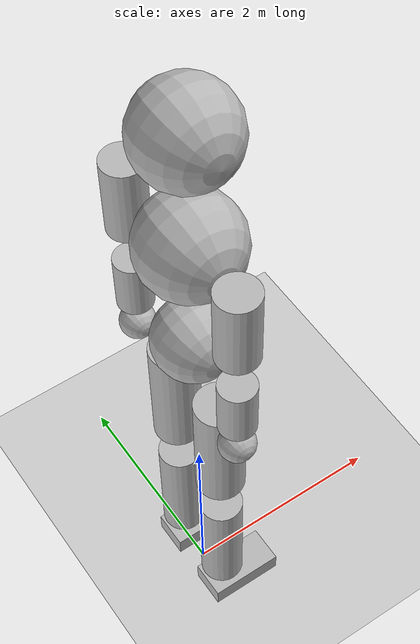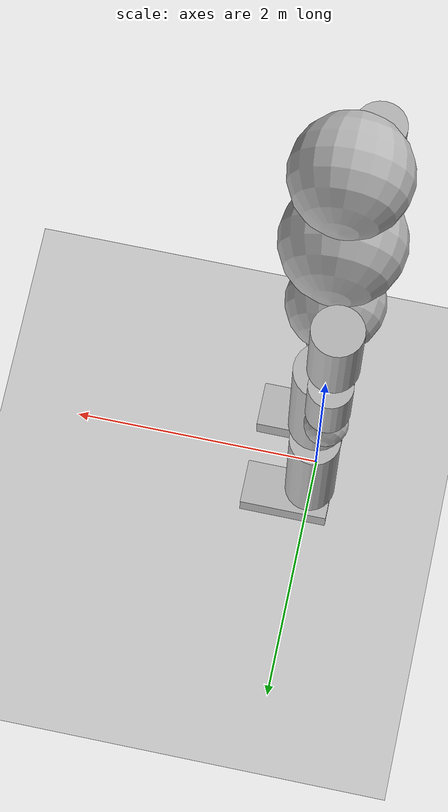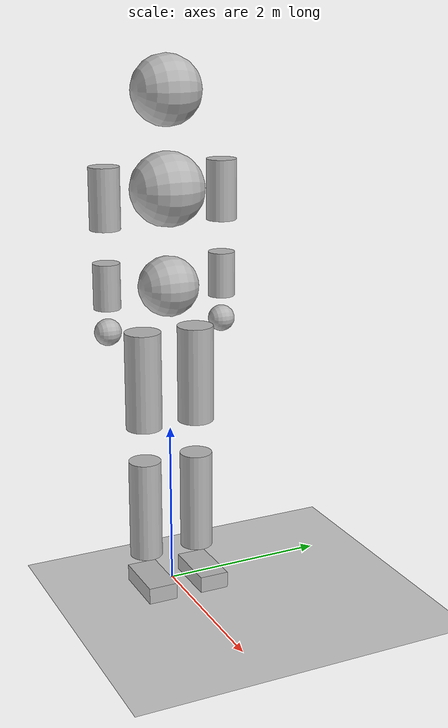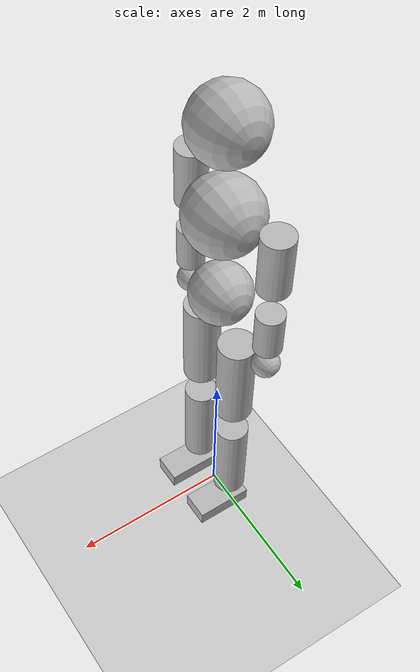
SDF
<sdf version="1.6">
 <world name="default">
  <light name="sun" type="directional">
   <pose>0 0 10 0 -0 0</pose>
   <diffuse>0.8 0.8 0.8 1</diffuse>
   <specular>0.1 0.1 0.1 1</specular>
   <attenuation>
    <range>1000</range>
    <constant>0.9</constant>
    <linear>0.01</linear>
    <quadratic>0.001</quadratic>
   </attenuation>
   <direction>-0.5 0.5 -1</direction>
  </light>
  <model name="ground_plane">
   <static>1</static>
   <link name="link">
    <collision name="collision">
     <geometry><plane><normal>0 0 1</normal><size>100 100</size></plane></geometry>
     <surface><friction><ode><mu>100</mu><mu2>50</mu2></ode></friction></surface>
    </collision>
    <visual name="visual">
     <cast_shadows>0</cast_shadows>
     <geometry><plane><normal>0 0 1</normal><size>100 100</size></plane></geometry>
     <material>
      <script><uri>file://media/materials/scripts/gazebo.material</uri><name>Gazebo/Grey</name></script>
     </material>
    </visual>
    <gravity>0</gravity>
   </link>
  </model>
  <gravity>0 0 -9.8</gravity>
  <magnetic_field>6e-06 2.3e-05 -4.2e-05</magnetic_field>
  <atmosphere type="adiabatic"/>
  <physics name="default_physics" default="0" type="ode">
   <max_step_size>0.001</max_step_size>
   <real_time_factor>1</real_time_factor>
   <real_time_update_rate>1000</real_time_update_rate>
  </physics>
  <scene><ambient>0.4 0.4 0.4 1</ambient><background>0.7 0.7 0.7 1</background><shadows>1</shadows></scene>
  <spherical_coordinates>
   <surface_model>EARTH_WGS84</surface_model>
   <latitude_deg>0</latitude_deg>
   <longitude_deg>0</longitude_deg>
   <elevation>0</elevation>
   <heading_deg>0</heading_deg>
  </spherical_coordinates>
  <model name="robot_description">
   <link name="base">
    <inertial>
     <pose>0 0.000223 0.279995 0 -0 0</pose>
     <mass>6.0001</mass>
     <inertia>
      <ixx>0.100108</ixx>
      <ixy>0</ixy>
      <ixz>0</ixz>
      <iyy>0.100108</iyy>
      <iyz>-6.2431e-09</iyz>
      <izz>0.1001</izz>
     </inertia>
    </inertial>
    <collision name="base_fixed_joint_lump__root_collision">
     <pose>0 0.000223 0.28 1.57 -0 0</pose>
     <geometry><sphere><radius>0.36</radius></sphere></geometry>
    </collision>
    <visual name="base_fixed_joint_lump__root_visual">
     <pose>0 0.000223 0.28 1.57 -0 0</pose>
     <geometry><sphere><radius>0.36</radius></sphere></geometry>
    </visual>
   </link>
   <link name="chest">
    <pose>0 0.000752 0.944604 1.57 -0 0</pose>
    <inertial>
     <pose>0 0.48 0 0 -0 0</pose>
     <mass>14</mass>
     <inertia><ixx>0.1</ixx><ixy>0</ixy><ixz>0</ixz><iyy>0.1</iyy><iyz>0</iyz><izz>0.1</izz></inertia>
    </inertial>
    <collision name="chest_collision">
     <pose>0 0.48 0 0 -0 0</pose>
     <geometry><sphere><radius>0.44</radius></sphere></geometry>
    </collision>
    <visual name="chest_visual">
     <pose>0 0.48 0 0 -0 0</pose>
     <geometry><sphere><radius>0.44</radius></sphere></geometry>
    </visual>
   </link>
   <joint name="chest" type="revolute">
    <child>chest</child>
    <parent>base</parent>
    <axis>
     <xyz>0 -1 0.000796</xyz>
     <limit><lower>-1e+16</lower><upper>1e+16</upper></limit>
     <dynamics><spring_reference>0</spring_reference><spring_stiffness>0</spring_stiffness></dynamics>
     <use_parent_model_frame>1</use_parent_model_frame>
    </axis>
   </joint>
   <link name="left_shoulder">
    <pose>-0.0962 0.733968 1.91802 1.57 -0 0</pose>
    <inertial>
     <pose>0 -0.56 0 0 -0 0</pose>
     <mass>1.5</mass>
     <inertia><ixx>0.1</ixx><ixy>0</ixy><ixz>0</ixz><iyy>0.1</iyy><iyz>0</iyz><izz>0.1</izz></inertia>
    </inertial>
    <collision name="left_shoulder_collision">
     <pose>0 -0.56 0 -1.5708 0 0</pose>
     <geometry><cylinder><length>0.72</length><radius>0.18</radius></cylinder></geometry>
    </collision>
    <visual name="left_shoulder_visual">
     <pose>0 -0.56 0 -1.5708 0 0</pose>
     <geometry><cylinder><length>0.72</length><radius>0.18</radius></cylinder></geometry>
    </visual>
   </link>
   <joint name="left_shoulder" type="revolute">
    <child>left_shoulder</child>
    <parent>chest</parent>
    <axis>
     <xyz>0 -1 0.000796</xyz>
     <limit><lower>-1e+16</lower><upper>1e+16</upper></limit>
     <dynamics><spring_reference>0</spring_reference><spring_stiffness>0</spring_stiffness></dynamics>
     <use_parent_model_frame>1</use_parent_model_frame>
    </axis>
   </joint>
   <link name="left_elbow">
    <pose>-0.0962 0.733092 0.818868 1.57 -0 0</pose>
    <inertial>
     <pose>0 -0.665263 0 0 -0 0</pose>
     <mass>1.5</mass>
     <inertia><ixx>0.302967</ixx><ixy>0</ixy><ixz>0</ixz><iyy>0.2</iyy><iyz>0</iyz><izz>0.302967</izz></inertia>
    </inertial>
    <collision name="left_elbow_collision">
     <pose>0 -0.48 0 -1.5708 0 0</pose>
     <geometry><cylinder><length>0.54</length><radius>0.16</radius></cylinder></geometry>
    </collision>
    <collision name="left_elbow_fixed_joint_lump__left_wrist_collision_1">
     <pose>0 -1.03579 0 0 -0 0</pose>
     <geometry><sphere><radius>0.16</radius></sphere></geometry>
    </collision>
    <visual name="left_elbow_visual">
     <pose>0 -0.48 0 -1.5708 0 0</pose>
     <geometry><cylinder><length>0.54</length><radius>0.16</radius></cylinder></geometry>
    </visual>
    <visual name="left_elbow_fixed_joint_lump__left_wrist_visual_1">
     <pose>0 -1.03579 0 0 -0 0</pose>
     <geometry><sphere><radius>0.16</radius></sphere></geometry>
    </visual>
   </link>
   <joint name="left_elbow" type="revolute">
    <child>left_elbow</child>
    <parent>left_shoulder</parent>
    <axis>
     <xyz>0 -1 0.000796</xyz>
     <limit><lower>0</lower><upper>3.14</upper><effort>1000</effort><velocity>0.5</velocity></limit>
     <dynamics><spring_reference>0</spring_reference><spring_stiffness>0</spring_stiffness></dynamics>
     <use_parent_model_frame>1</use_parent_model_frame>
    </axis>
   </joint>
   <link name="neck">
    <pose>0 0.001465 1.84018 1.57 -0 0</pose>
    <inertial>
     <pose>0 0.7 0 0 -0 0</pose>
     <mass>2</mass>
     <inertia><ixx>0.1</ixx><ixy>0</ixy><ixz>0</ixz><iyy>0.1</iyy><iyz>0</iyz><izz>0.1</izz></inertia>
    </inertial>
    <collision name="neck_collision">
     <pose>0 0.7 0 0 -0 0</pose>
     <geometry><sphere><radius>0.41</radius></sphere></geometry>
    </collision>
    <visual name="neck_visual">
     <pose>0 0.7 0 0 -0 0</pose>
     <geometry><sphere><radius>0.41</radius></sphere></geometry>
    </visual>
   </link>
   <joint name="neck" type="revolute">
    <child>neck</child>
    <parent>chest</parent>
    <axis>
     <xyz>1 0.000796 1</xyz>
     <limit><lower>-1e+16</lower><upper>1e+16</upper></limit>
     <dynamics><spring_reference>0</spring_reference><spring_stiffness>0</spring_stiffness></dynamics>
     <use_parent_model_frame>1</use_parent_model_frame>
    </axis>
   </joint>
   <link name="right_shoulder">
    <pose>-0.0962 -0.730912 1.91919 1.57 -0 0</pose>
    <inertial>
     <pose>0 -0.56 0 0 -0 0</pose>
     <mass>1.5</mass>
     <inertia><ixx>0.1</ixx><ixy>0</ixy><ixz>0</ixz><iyy>0.1</iyy><iyz>0</iyz><izz>0.1</izz></inertia>
    </inertial>
    <collision name="right_shoulder_collision">
     <pose>0 -0.56 0 -1.5708 0 0</pose>
     <geometry><cylinder><length>0.72</length><radius>0.18</radius></cylinder></geometry>
    </collision>
    <visual name="right_shoulder_visual">
     <pose>0 -0.56 0 -1.5708 0 0</pose>
     <geometry><cylinder><length>0.72</length><radius>0.18</radius></cylinder></geometry>
    </visual>
   </link>
   <joint name="right_shoulder" type="revolute">
    <child>right_shoulder</child>
    <parent>chest</parent>
    <axis>
     <xyz>0 -1 0.000796</xyz>
     <limit><lower>-1e+16</lower><upper>1e+16</upper></limit>
     <dynamics><spring_reference>0</spring_reference><spring_stiffness>0</spring_stiffness></dynamics>
     <use_parent_model_frame>1</use_parent_model_frame>
    </axis>
   </joint>
   <link name="right_elbow">
    <pose>-0.0962 -0.731787 0.820035 1.57 -0 0</pose>
    <inertial>
     <pose>0 -0.665263 0 0 -0 0</pose>
     <mass>1.5</mass>
     <inertia><ixx>0.302967</ixx><ixy>0</ixy><ixz>0</ixz><iyy>0.2</iyy><iyz>0</iyz><izz>0.302967</izz></inertia>
    </inertial>
    <collision name="right_elbow_collision">
     <pose>0 -0.48 0 -1.5708 0 0</pose>
     <geometry><cylinder><length>0.54</length><radius>0.16</radius></cylinder></geometry>
    </collision>
    <collision name="right_elbow_fixed_joint_lump__right_wrist_collision_1">
     <pose>0 -1.03579 0 0 -0 0</pose>
     <geometry><sphere><radius>0.16</radius></sphere></geometry>
    </collision>
    <visual name="right_elbow_visual">
     <pose>0 -0.48 0 -1.5708 0 0</pose>
     <geometry><cylinder><length>0.54</length><radius>0.16</radius></cylinder></geometry>
    </visual>
    <visual name="right_elbow_fixed_joint_lump__right_wrist_visual_1">
     <pose>0 -1.03579 0 0 -0 0</pose>
     <geometry><sphere><radius>0.16</radius></sphere></geometry>
    </visual>
   </link>
   <joint name="right_elbow" type="revolute">
    <child>right_elbow</child>
    <parent>right_shoulder</parent>
    <axis>
     <xyz>0 -1 0.000796</xyz>
     <limit><lower>0</lower><upper>3.14</upper><effort>1000</effort><velocity>0.5</velocity></limit>
     <dynamics><spring_reference>0</spring_reference><spring_stiffness>0</spring_stiffness></dynamics>
     <use_parent_model_frame>1</use_parent_model_frame>
    </axis>
   </joint>
   <link name="left_hip">
    <pose>0 0.339548 -0.00027 1.57 -0 0</pose>
    <inertial>
     <pose>0 -0.84 0 0 -0 0</pose>
     <mass>4.5</mass>
     <inertia><ixx>0.1</ixx><ixy>0</ixy><ixz>0</ixz><iyy>0.1</iyy><iyz>0</iyz><izz>0.1</izz></inertia>
    </inertial>
    <collision name="left_hip_collision">
     <pose>0 -0.84 0 -1.5708 0 0</pose>
     <geometry><cylinder><length>1.2</length><radius>0.22</radius></cylinder></geometry>
    </collision>
    <visual name="left_hip_visual">
     <pose>0 -0.84 0 -1.5708 0 0</pose>
     <geometry><cylinder><length>1.2</length><radius>0.22</radius></cylinder></geometry>
    </visual>
   </link>
   <joint name="left_hip" type="revolute">
    <child>left_hip</child>
    <parent>base</parent>
    <axis>
     <xyz>0 -1 0.000796</xyz>
     <limit><lower>-1e+16</lower><upper>1e+16</upper></limit>
     <dynamics><spring_reference>0</spring_reference><spring_stiffness>0</spring_stiffness></dynamics>
     <use_parent_model_frame>1</use_parent_model_frame>
    </axis>
   </joint>
   <link name="left_knee">
    <pose>0 0.338205 -1.68645 1.57 -0 0</pose>
    <inertial>
     <pose>0 -0.8 0 0 -0 0</pose>
     <mass>3</mass>
     <inertia><ixx>0.1</ixx><ixy>0</ixy><ixz>0</ixz><iyy>0.1</iyy><iyz>0</iyz><izz>0.1</izz></inertia>
    </inertial>
    <collision name="left_knee_collision">
     <pose>0 -0.8 0 -1.5708 0 0</pose>
     <geometry><cylinder><length>1.24</length><radius>0.2</radius></cylinder></geometry>
    </collision>
    <visual name="left_knee_visual">
     <pose>0 -0.8 0 -1.5708 0 0</pose>
     <geometry><cylinder><length>1.24</length><radius>0.2</radius></cylinder></geometry>
    </visual>
   </link>
   <joint name="left_knee" type="revolute">
    <child>left_knee</child>
    <parent>left_hip</parent>
    <axis>
     <xyz>0 -1 0.000796</xyz>
     <limit><lower>-3.14</lower><upper>0</upper><effort>1000</effort><velocity>0.5</velocity></limit>
     <dynamics><spring_reference>0</spring_reference><spring_stiffness>0</spring_stiffness></dynamics>
     <use_parent_model_frame>1</use_parent_model_frame>
    </axis>
   </joint>
   <link name="left_ankle">
    <pose>0 0.3369 -3.32593 1.57 -0 0</pose>
    <inertial>
     <pose>0.18 -0.09 0 0 -0 0</pose>
     <mass>1</mass>
     <inertia><ixx>0.1</ixx><ixy>0</ixy><ixz>0</ixz><iyy>0.1</iyy><iyz>0</iyz><izz>0.1</izz></inertia>
    </inertial>
    <collision name="left_ankle_collision">
     <pose>0.18 -0.09 0 0 -0 0</pose>
     <geometry><box><size>0.708 0.22 0.36</size></box></geometry>
    </collision>
    <visual name="left_ankle_visual">
     <pose>0.18 -0.09 0 0 -0 0</pose>
     <geometry><box><size>0.708 0.22 0.36</size></box></geometry>
    </visual>
   </link>
   <joint name="left_ankle" type="revolute">
    <child>left_ankle</child>
    <parent>left_knee</parent>
    <axis>
     <xyz>0 -1 0.000796</xyz>
     <limit><lower>-1e+16</lower><upper>1e+16</upper></limit>
     <dynamics><spring_reference>0</spring_reference><spring_stiffness>0</spring_stiffness></dynamics>
     <use_parent_model_frame>1</use_parent_model_frame>
    </axis>
   </joint>
   <link name="right_hip">
    <pose>0 -0.339548 0.00027 1.57 -0 0</pose>
    <inertial>
     <pose>0 -0.84 0 0 -0 0</pose>
     <mass>4.5</mass>
     <inertia><ixx>0.1</ixx><ixy>0</ixy><ixz>0</ixz><iyy>0.1</iyy><iyz>0</iyz><izz>0.1</izz></inertia>
    </inertial>
    <collision name="right_hip_collision">
     <pose>0 -0.84 0 -1.5708 0 0</pose>
     <geometry><cylinder><length>1.2</length><radius>0.22</radius></cylinder></geometry>
    </collision>
    <visual name="right_hip_visual">
     <pose>0 -0.84 0 -1.5708 0 0</pose>
     <geometry><cylinder><length>1.2</length><radius>0.22</radius></cylinder></geometry>
    </visual>
   </link>
   <joint name="right_hip" type="revolute">
    <child>right_hip</child>
    <parent>base</parent>
    <axis>
     <xyz>0 -1 0.000796</xyz>
     <limit><lower>-1e+16</lower><upper>1e+16</upper></limit>
     <dynamics><spring_reference>0</spring_reference><spring_stiffness>0</spring_stiffness></dynamics>
     <use_parent_model_frame>1</use_parent_model_frame>
    </axis>
   </joint>
   <link name="right_knee">
    <pose>0 -0.340891 -1.68591 1.57 -0 0</pose>
    <inertial>
     <pose>0 -0.8 0 0 -0 0</pose>
     <mass>3</mass>
     <inertia><ixx>0.1</ixx><ixy>0</ixy><ixz>0</ixz><iyy>0.1</iyy><iyz>0</iyz><izz>0.1</izz></inertia>
    </inertial>
    <collision name="right_knee_collision">
     <pose>0 -0.8 0 -1.5708 0 0</pose>
     <geometry><cylinder><length>1.24</length><radius>0.2</radius></cylinder></geometry>
    </collision>
    <visual name="right_knee_visual">
     <pose>0 -0.8 0 -1.5708 0 0</pose>
     <geometry><cylinder><length>1.24</length><radius>0.2</radius></cylinder></geometry>
    </visual>
   </link>
   <joint name="right_knee" type="revolute">
    <child>right_knee</child>
    <parent>right_hip</parent>
    <axis>
     <xyz>0 -1 0.000796</xyz>
     <limit><lower>-3.14</lower><upper>0</upper><effort>1000</effort><velocity>0.5</velocity></limit>
     <dynamics><spring_reference>0</spring_reference><spring_stiffness>0</spring_stiffness></dynamics>
     <use_parent_model_frame>1</use_parent_model_frame>
    </axis>
   </joint>
   <link name="right_ankle">
    <pose>0 -0.342196 -3.32539 1.57 -0 0</pose>
    <inertial>
     <pose>0.18 -0.09 0 0 -0 0</pose>
     <mass>1</mass>
     <inertia><ixx>0.1</ixx><ixy>0</ixy><ixz>0</ixz><iyy>0.1</iyy><iyz>0</iyz><izz>0.1</izz></inertia>
    </inertial>
    <collision name="right_ankle_collision">
     <pose>0.18 -0.09 0 0 -0 0</pose>
     <geometry><box><size>0.708 0.22 0.36</size></box></geometry>
    </collision>
    <visual name="right_ankle_visual">
     <pose>0.18 -0.09 0 0 -0 0</pose>
     <geometry><box><size>0.708 0.22 0.36</size></box></geometry>
    </visual>
   </link>
   <joint name="right_ankle" type="revolute">
    <child>right_ankle</child>
    <parent>right_knee</parent>
    <axis>
     <xyz>0 -1 0.000796</xyz>
     <limit><lower>-1e+16</lower><upper>1e+16</upper></limit>
     <dynamics><spring_reference>0</spring_reference><spring_stiffness>0</spring_stiffness></dynamics>
     <use_parent_model_frame>1</use_parent_model_frame>
    </axis>
   </joint>
   <pose>0 0 3.5 0 -0 0</pose>
  </model>
 </world>
</sdf>
